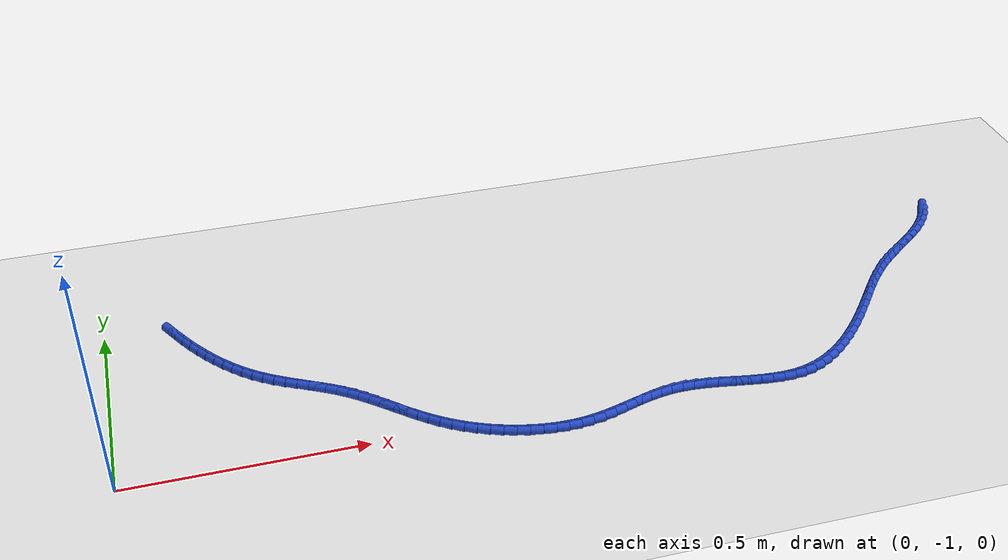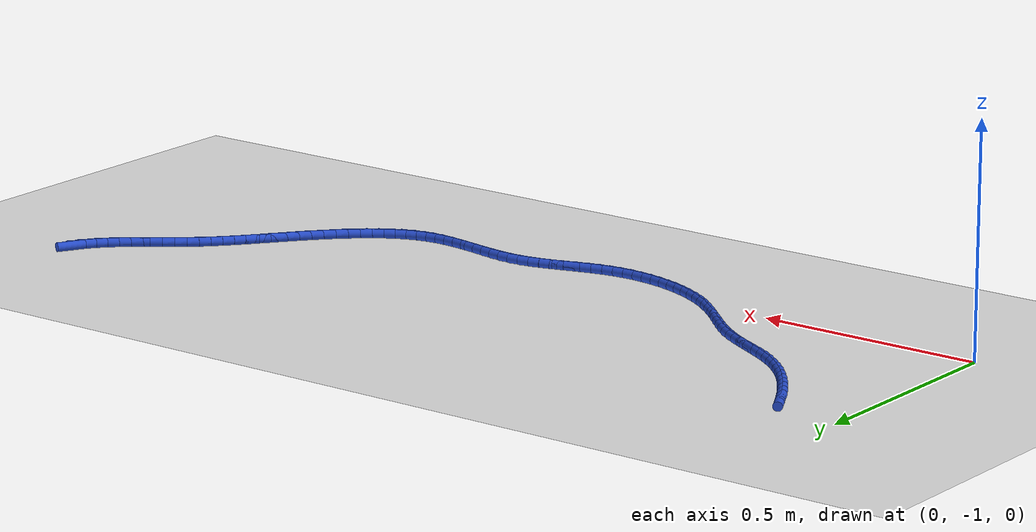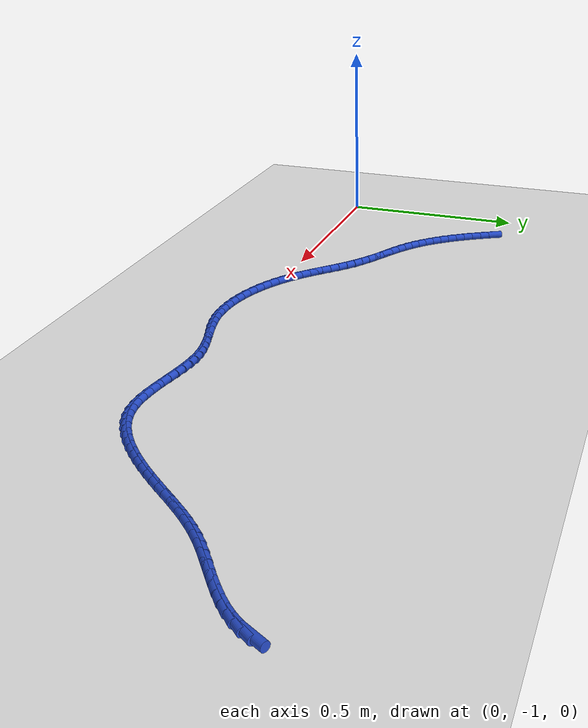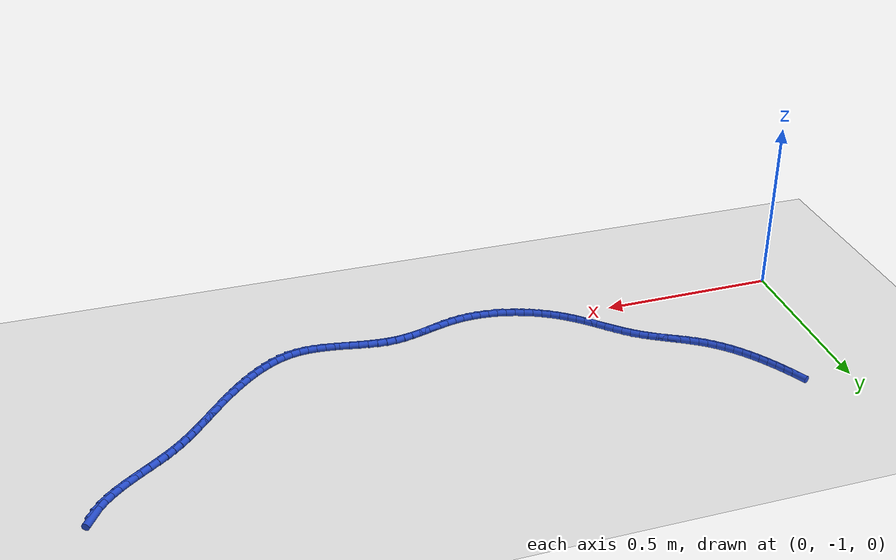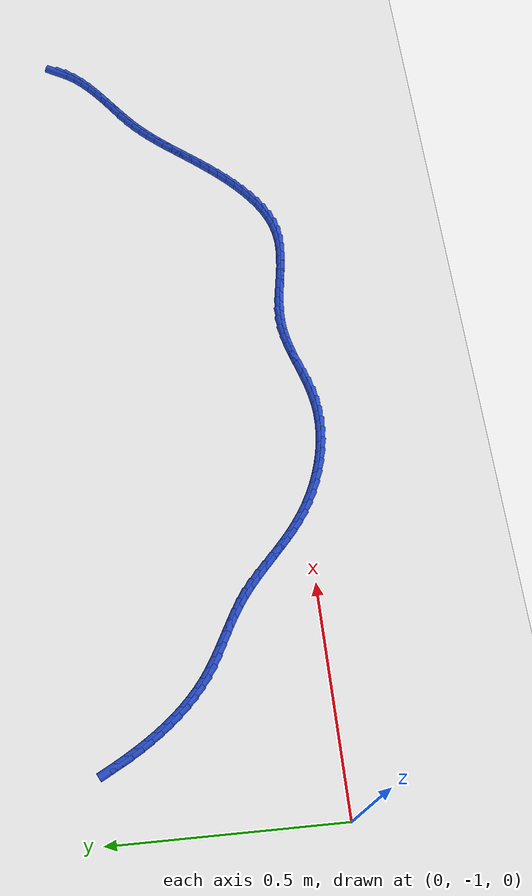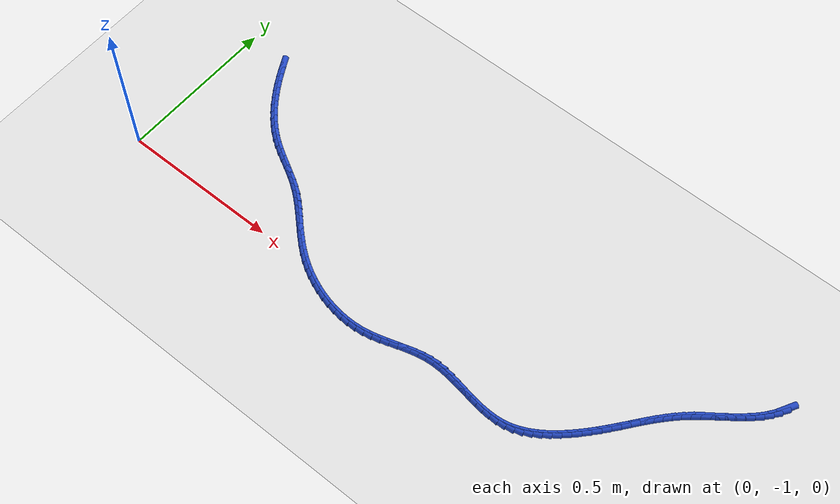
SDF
<sdf version="1.6">
 <world name="default">
  <model name="ground_plane">
   <static>1</static>
   <link name="link">
    <collision name="collision">
     <geometry><plane><normal>0 0 1</normal><size>100 100</size></plane></geometry>
     <surface><friction><ode><mu>100</mu><mu2>50</mu2></ode></friction></surface>
    </collision>
    <visual name="visual">
     <cast_shadows>0</cast_shadows>
     <geometry><plane><normal>0 0 1</normal><size>100 100</size></plane></geometry>
     <material>
      <script><uri>file://media/materials/scripts/gazebo.material</uri><name>Gazebo/WhiteGlow</name></script>
     </material>
    </visual>
   </link>
  </model>
  <model name="line">
   <link name="link_151">
    <pose>1.965276894175677 -0.5184496712808392 0.01 0 1.57 1.067705081291089</pose>
    <collision name="collision">
     <geometry><cylinder><radius>0.01</radius><length>0.08</length></cylinder></geometry>
    </collision>
    <visual name="visual">
     <material>
      <script><name>Gazebo/Blue</name><uri>file://media/materials/scripts/gazebo.material</uri></script>
     </material>
     <geometry><cylinder><radius>0.01</radius><length>0.08</length></cylinder></geometry>
    </visual>
   </link>
   <link name="link_152">
    <pose>1.9538280006618758 -0.5392536195869684 0.01 0 1.57 0.9451100345238949</pose>
    <collision name="collision">
     <geometry><cylinder><radius>0.01</radius><length>0.08</length></cylinder></geometry>
    </collision>
    <visual name="visual">
     <material>
      <script><name>Gazebo/Blue</name><uri>file://media/materials/scripts/gazebo.material</uri></script>
     </material>
     <geometry><cylinder><radius>0.01</radius><length>0.08</length></cylinder></geometry>
    </visual>
   </link>
   <link name="link_153">
    <pose>1.939697710076135 -0.558810343959787 0.01 0 1.57 0.8461090231270479</pose>
    <collision name="collision">
     <geometry><cylinder><radius>0.01</radius><length>0.08</length></cylinder></geometry>
    </collision>
    <visual name="visual">
     <material>
      <script><name>Gazebo/Blue</name><uri>file://media/materials/scripts/gazebo.material</uri></script>
     </material>
     <geometry><cylinder><radius>0.01</radius><length>0.08</length></cylinder></geometry>
    </visual>
   </link>
   <link name="link_154">
    <pose>1.9233093747792624 -0.5773199714462631 0.01 0 1.57 0.7697840137708506</pose>
    <collision name="collision">
     <geometry><cylinder><radius>0.01</radius><length>0.08</length></cylinder></geometry>
    </collision>
    <visual name="visual">
     <material>
      <script><name>Gazebo/Blue</name><uri>file://media/materials/scripts/gazebo.material</uri></script>
     </material>
     <geometry><cylinder><radius>0.01</radius><length>0.08</length></cylinder></geometry>
    </visual>
   </link>
   <link name="link_155">
    <pose>1.9050863471320683 -0.5949826290933653 0.01 0 1.57 0.7140721683317175</pose>
    <collision name="collision">
     <geometry><cylinder><radius>0.01</radius><length>0.08</length></cylinder></geometry>
    </collision>
    <visual name="visual">
     <material>
      <script><name>Gazebo/Blue</name><uri>file://media/materials/scripts/gazebo.material</uri></script>
     </material>
     <geometry><cylinder><radius>0.01</radius><length>0.08</length></cylinder></geometry>
    </visual>
   </link>
   <link name="link_156">
    <pose>1.8854519794953604 -0.6119984439480618 0.01 0 1.57 0.6768430604196012</pose>
    <collision name="collision">
     <geometry><cylinder><radius>0.01</radius><length>0.08</length></cylinder></geometry>
    </collision>
    <visual name="visual">
     <material>
      <script><name>Gazebo/Blue</name><uri>file://media/materials/scripts/gazebo.material</uri></script>
     </material>
     <geometry><cylinder><radius>0.01</radius><length>0.08</length></cylinder></geometry>
    </visual>
   </link>
   <link name="link_157">
    <pose>1.8648296242299496 -0.6285675430573202 0.01 0 1.57 0.6564313507339162</pose>
    <collision name="collision">
     <geometry><cylinder><radius>0.01</radius><length>0.08</length></cylinder></geometry>
    </collision>
    <visual name="visual">
     <material>
      <script><name>Gazebo/Blue</name><uri>file://media/materials/scripts/gazebo.material</uri></script>
     </material>
     <geometry><cylinder><radius>0.01</radius><length>0.08</length></cylinder></geometry>
    </visual>
   </link>
   <link name="link_158">
    <pose>1.843642633696645 -0.6448900534681092 0.01 0 1.57 0.6518456621480831</pose>
    <collision name="collision">
     <geometry><cylinder><radius>0.01</radius><length>0.08</length></cylinder></geometry>
    </collision>
    <visual name="visual">
     <material>
      <script><name>Gazebo/Blue</name><uri>file://media/materials/scripts/gazebo.material</uri></script>
     </material>
     <geometry><cylinder><radius>0.01</radius><length>0.08</length></cylinder></geometry>
    </visual>
   </link>
   <link name="link_159">
    <pose>1.8223143602562548 -0.6611661022273972 0.01 0 1.57 0.6628301475448952</pose>
    <collision name="collision">
     <geometry><cylinder><radius>0.01</radius><length>0.08</length></cylinder></geometry>
    </collision>
    <visual name="visual">
     <material>
      <script><name>Gazebo/Blue</name><uri>file://media/materials/scripts/gazebo.material</uri></script>
     </material>
     <geometry><cylinder><radius>0.01</radius><length>0.08</length></cylinder></geometry>
    </visual>
   </link>
   <link name="link_160">
    <pose>1.8012681562695896 -0.6775958163821523 0.01 0 1.57 0.6898691146456359</pose>
    <collision name="collision">
     <geometry><cylinder><radius>0.01</radius><length>0.08</length></cylinder></geometry>
    </collision>
    <visual name="visual">
     <material>
      <script><name>Gazebo/Blue</name><uri>file://media/materials/scripts/gazebo.material</uri></script>
     </material>
     <geometry><cylinder><radius>0.01</radius><length>0.08</length></cylinder></geometry>
    </visual>
   </link>
   <link name="link_161">
    <pose>1.7809273740974576 -0.6943793229793426 0.01 0 1.57 0.733475138785043</pose>
    <collision name="collision">
     <geometry><cylinder><radius>0.01</radius><length>0.08</length></cylinder></geometry>
    </collision>
    <visual name="visual">
     <material>
      <script><name>Gazebo/Blue</name><uri>file://media/materials/scripts/gazebo.material</uri></script>
     </material>
     <geometry><cylinder><radius>0.01</radius><length>0.08</length></cylinder></geometry>
    </visual>
   </link>
   <link name="link_162">
    <pose>1.76169708181586 -0.7117095734863929 0.01 0 1.57 0.7820999817870062</pose>
    <collision name="collision">
     <geometry><cylinder><radius>0.01</radius><length>0.08</length></cylinder></geometry>
    </collision>
    <visual name="visual">
     <material>
      <script><name>Gazebo/Blue</name><uri>file://media/materials/scripts/gazebo.material</uri></script>
     </material>
     <geometry><cylinder><radius>0.01</radius><length>0.08</length></cylinder></geometry>
    </visual>
   </link>
   <link name="link_163">
    <pose>1.7436419977473359 -0.7296459507485917 0.01 0 1.57 0.8237956237198133</pose>
    <collision name="collision">
     <geometry><cylinder><radius>0.01</radius><length>0.08</length></cylinder></geometry>
    </collision>
    <visual name="visual">
     <material>
      <script><name>Gazebo/Blue</name><uri>file://media/materials/scripts/gazebo.material</uri></script>
     </material>
     <geometry><cylinder><radius>0.01</radius><length>0.08</length></cylinder></geometry>
    </visual>
   </link>
   <link name="link_164">
    <pose>1.7265258510311992 -0.7481297158553794 0.01 0 1.57 0.85716869890517</pose>
    <collision name="collision">
     <geometry><cylinder><radius>0.01</radius><length>0.08</length></cylinder></geometry>
    </collision>
    <visual name="visual">
     <material>
      <script><name>Gazebo/Blue</name><uri>file://media/materials/scripts/gazebo.material</uri></script>
     </material>
     <geometry><cylinder><radius>0.01</radius><length>0.08</length></cylinder></geometry>
    </visual>
   </link>
   <link name="link_165">
    <pose>1.7101019959282138 -0.7670980583250598 0.01 0 1.57 0.8815682735843287</pose>
    <collision name="collision">
     <geometry><cylinder><radius>0.01</radius><length>0.08</length></cylinder></geometry>
    </collision>
    <visual name="visual">
     <material>
      <script><name>Gazebo/Blue</name><uri>file://media/materials/scripts/gazebo.material</uri></script>
     </material>
     <geometry><cylinder><radius>0.01</radius><length>0.08</length></cylinder></geometry>
    </visual>
   </link>
   <link name="link_166">
    <pose>1.6941237866991443 -0.7864881676759357 0.01 0 1.57 0.8966745380138756</pose>
    <collision name="collision">
     <geometry><cylinder><radius>0.01</radius><length>0.08</length></cylinder></geometry>
    </collision>
    <visual name="visual">
     <material>
      <script><name>Gazebo/Blue</name><uri>file://media/materials/scripts/gazebo.material</uri></script>
     </material>
     <geometry><cylinder><radius>0.01</radius><length>0.08</length></cylinder></geometry>
    </visual>
   </link>
   <link name="link_167">
    <pose>1.6783445776047565 -0.8062372334263108 0.01 0 1.57 0.9024550460264525</pose>
    <collision name="collision">
     <geometry><cylinder><radius>0.01</radius><length>0.08</length></cylinder></geometry>
    </collision>
    <visual name="visual">
     <material>
      <script><name>Gazebo/Blue</name><uri>file://media/materials/scripts/gazebo.material</uri></script>
     </material>
     <geometry><cylinder><radius>0.01</radius><length>0.08</length></cylinder></geometry>
    </visual>
   </link>
   <link name="link_168">
    <pose>1.6625177229058126 -0.8262824450944886 0.01 0 1.57 0.8991206415453086</pose>
    <collision name="collision">
     <geometry><cylinder><radius>0.01</radius><length>0.08</length></cylinder></geometry>
    </collision>
    <visual name="visual">
     <material>
      <script><name>Gazebo/Blue</name><uri>file://media/materials/scripts/gazebo.material</uri></script>
     </material>
     <geometry><cylinder><radius>0.01</radius><length>0.08</length></cylinder></geometry>
    </visual>
   </link>
   <link name="link_169">
    <pose>1.6463965768630788 -0.8465609921987727 0.01 0 1.57 0.887151039999048</pose>
    <collision name="collision">
     <geometry><cylinder><radius>0.01</radius><length>0.08</length></cylinder></geometry>
    </collision>
    <visual name="visual">
     <material>
      <script><name>Gazebo/Blue</name><uri>file://media/materials/scripts/gazebo.material</uri></script>
     </material>
     <geometry><cylinder><radius>0.01</radius><length>0.08</length></cylinder></geometry>
    </visual>
   </link>
   <link name="link_170">
    <pose>1.629741233630653 -0.8670043134201046 0.01 0 1.57 0.8681226429343367</pose>
    <collision name="collision">
     <geometry><cylinder><radius>0.01</radius><length>0.08</length></cylinder></geometry>
    </collision>
    <visual name="visual">
     <material>
      <script><name>Gazebo/Blue</name><uri>file://media/materials/scripts/gazebo.material</uri></script>
     </material>
     <geometry><cylinder><radius>0.01</radius><length>0.08</length></cylinder></geometry>
    </visual>
   </link>
   <link name="link_171">
    <pose>1.6124384854402471 -0.88743574186531 0.01 0 1.57 0.8429775357355328</pose>
    <collision name="collision">
     <geometry><cylinder><radius>0.01</radius><length>0.08</length></cylinder></geometry>
    </collision>
    <visual name="visual">
     <material>
      <script><name>Gazebo/Blue</name><uri>file://media/materials/scripts/gazebo.material</uri></script>
     </material>
     <geometry><cylinder><radius>0.01</radius><length>0.08</length></cylinder></geometry>
    </visual>
   </link>
   <link name="link_172">
    <pose>1.5944878395027704 -0.9075824361943148 0.01 0 1.57 0.8113388265575604</pose>
    <collision name="collision">
     <geometry><cylinder><radius>0.01</radius><length>0.08</length></cylinder></geometry>
    </collision>
    <visual name="visual">
     <material>
      <script><name>Gazebo/Blue</name><uri>file://media/materials/scripts/gazebo.material</uri></script>
     </material>
     <geometry><cylinder><radius>0.01</radius><length>0.08</length></cylinder></geometry>
    </visual>
   </link>
   <link name="link_173">
    <pose>1.5758927343077853 -0.9271682006898991 0.01 0 1.57 0.7725651168342612</pose>
    <collision name="collision">
     <geometry><cylinder><radius>0.01</radius><length>0.08</length></cylinder></geometry>
    </collision>
    <visual name="visual">
     <material>
      <script><name>Gazebo/Blue</name><uri>file://media/materials/scripts/gazebo.material</uri></script>
     </material>
     <geometry><cylinder><radius>0.01</radius><length>0.08</length></cylinder></geometry>
    </visual>
   </link>
   <link name="link_174">
    <pose>1.5566566083448528 -0.9459168396348449 0.01 0 1.57 0.7257928009373416</pose>
    <collision name="collision">
     <geometry><cylinder><radius>0.01</radius><length>0.08</length></cylinder></geometry>
    </collision>
    <visual name="visual">
     <material>
      <script><name>Gazebo/Blue</name><uri>file://media/materials/scripts/gazebo.material</uri></script>
     </material>
     <geometry><cylinder><radius>0.01</radius><length>0.08</length></cylinder></geometry>
    </visual>
   </link>
   <link name="link_175">
    <pose>1.5367829001035356 -0.963552157311934 0.01 0 1.57 0.6699511456182803</pose>
    <collision name="collision">
     <geometry><cylinder><radius>0.01</radius><length>0.08</length></cylinder></geometry>
    </collision>
    <visual name="visual">
     <material>
      <script><name>Gazebo/Blue</name><uri>file://media/materials/scripts/gazebo.material</uri></script>
     </material>
     <geometry><cylinder><radius>0.01</radius><length>0.08</length></cylinder></geometry>
    </visual>
   </link>
   <link name="link_176">
    <pose>1.516275048073394 -0.9797979580039471 0.01 0 1.57 0.6038061584932513</pose>
    <collision name="collision">
     <geometry><cylinder><radius>0.01</radius><length>0.08</length></cylinder></geometry>
    </collision>
    <visual name="visual">
     <material>
      <script><name>Gazebo/Blue</name><uri>file://media/materials/scripts/gazebo.material</uri></script>
     </material>
     <geometry><cylinder><radius>0.01</radius><length>0.08</length></cylinder></geometry>
    </visual>
   </link>
   <link name="link_177">
    <pose>1.4951364907439912 -0.9943780459936669 0.01 0 1.57 0.5260650137779697</pose>
    <collision name="collision">
     <geometry><cylinder><radius>0.01</radius><length>0.08</length></cylinder></geometry>
    </collision>
    <visual name="visual">
     <material>
      <script><name>Gazebo/Blue</name><uri>file://media/materials/scripts/gazebo.material</uri></script>
     </material>
     <geometry><cylinder><radius>0.01</radius><length>0.08</length></cylinder></geometry>
    </visual>
   </link>
   <link name="link_178">
    <pose>1.4733706666048887 -1.0070162255638737 0.01 0 1.57 0.43558398252144775</pose>
    <collision name="collision">
     <geometry><cylinder><radius>0.01</radius><length>0.08</length></cylinder></geometry>
    </collision>
    <visual name="visual">
     <material>
      <script><name>Gazebo/Blue</name><uri>file://media/materials/scripts/gazebo.material</uri></script>
     </material>
     <geometry><cylinder><radius>0.01</radius><length>0.08</length></cylinder></geometry>
    </visual>
   </link>
   <link name="link_179">
    <pose>1.4509810141456476 -1.0174363009973493 0.01 0 1.57 0.33172066715835363</pose>
    <collision name="collision">
     <geometry><cylinder><radius>0.01</radius><length>0.08</length></cylinder></geometry>
    </collision>
    <visual name="visual">
     <material>
      <script><name>Gazebo/Blue</name><uri>file://media/materials/scripts/gazebo.material</uri></script>
     </material>
     <geometry><cylinder><radius>0.01</radius><length>0.08</length></cylinder></geometry>
    </visual>
   </link>
   <link name="link_180">
    <pose>1.42797097185583 -1.0253620765768754 0.01 0 1.57 0.21490538724961683</pose>
    <collision name="collision">
     <geometry><cylinder><radius>0.01</radius><length>0.08</length></cylinder></geometry>
    </collision>
    <visual name="visual">
     <material>
      <script><name>Gazebo/Blue</name><uri>file://media/materials/scripts/gazebo.material</uri></script>
     </material>
     <geometry><cylinder><radius>0.01</radius><length>0.08</length></cylinder></geometry>
    </visual>
   </link>
   <link name="link_181">
    <pose>1.404344186047511 -1.0305192390154334 0.01 0 1.57 0.09707865303874233</pose>
    <collision name="collision">
     <geometry><cylinder><radius>0.01</radius><length>0.08</length></cylinder></geometry>
    </collision>
    <visual name="visual">
     <material>
      <script><name>Gazebo/Blue</name><uri>file://media/materials/scripts/gazebo.material</uri></script>
     </material>
     <geometry><cylinder><radius>0.01</radius><length>0.08</length></cylinder></geometry>
    </visual>
   </link>
   <link name="link_182">
    <pose>1.3801312120989178 -1.0328772139640507 0.01 0 1.57 0.00042199425819911224</pose>
    <collision name="collision">
     <geometry><cylinder><radius>0.01</radius><length>0.08</length></cylinder></geometry>
    </collision>
    <visual name="visual">
     <material>
      <script><name>Gazebo/Blue</name><uri>file://media/materials/scripts/gazebo.material</uri></script>
     </material>
     <geometry><cylinder><radius>0.01</radius><length>0.08</length></cylinder></geometry>
    </visual>
   </link>
   <link name="link_183">
    <pose>1.3554158426733494 -1.0328876437086567 0.01 0 1.57 -0.07265271076045415</pose>
    <collision name="collision">
     <geometry><cylinder><radius>0.01</radius><length>0.08</length></cylinder></geometry>
    </collision>
    <visual name="visual">
     <material>
      <script><name>Gazebo/Blue</name><uri>file://media/materials/scripts/gazebo.material</uri></script>
     </material>
     <geometry><cylinder><radius>0.01</radius><length>0.08</length></cylinder></geometry>
    </visual>
   </link>
   <link name="link_184">
    <pose>1.3302881254913301 -1.031058828057119 0.01 0 1.57 -0.1235234635745584</pose>
    <collision name="collision">
     <geometry><cylinder><radius>0.01</radius><length>0.08</length></cylinder></geometry>
    </collision>
    <visual name="visual">
     <material>
      <script><name>Gazebo/Blue</name><uri>file://media/materials/scripts/gazebo.material</uri></script>
     </material>
     <geometry><cylinder><radius>0.01</radius><length>0.08</length></cylinder></geometry>
    </visual>
   </link>
   <link name="link_185">
    <pose>1.304838108273385 -1.0278990668173058 0.01 0 1.57 -0.15383923819312187</pose>
    <collision name="collision">
     <geometry><cylinder><radius>0.01</radius><length>0.08</length></cylinder></geometry>
    </collision>
    <visual name="visual">
     <material>
      <script><name>Gazebo/Blue</name><uri>file://media/materials/scripts/gazebo.material</uri></script>
     </material>
     <geometry><cylinder><radius>0.01</radius><length>0.08</length></cylinder></geometry>
    </visual>
   </link>
   <link name="link_186">
    <pose>1.279155838740039 -1.0239166597970855 0.01 0 1.57 -0.1648726464082603</pose>
    <collision name="collision">
     <geometry><cylinder><radius>0.01</radius><length>0.08</length></cylinder></geometry>
    </collision>
    <visual name="visual">
     <material>
      <script><name>Gazebo/Blue</name><uri>file://media/materials/scripts/gazebo.material</uri></script>
     </material>
     <geometry><cylinder><radius>0.01</radius><length>0.08</length></cylinder></geometry>
    </visual>
   </link>
   <link name="link_187">
    <pose>1.2533313646118176 -1.019619906804326 0.01 0 1.57 -0.15724337258720825</pose>
    <collision name="collision">
     <geometry><cylinder><radius>0.01</radius><length>0.08</length></cylinder></geometry>
    </collision>
    <visual name="visual">
     <material>
      <script><name>Gazebo/Blue</name><uri>file://media/materials/scripts/gazebo.material</uri></script>
     </material>
     <geometry><cylinder><radius>0.01</radius><length>0.08</length></cylinder></geometry>
    </visual>
   </link>
   <link name="link_188">
    <pose>1.2274547336092447 -1.0155171076468947 0.01 0 1.57 -0.13085445527852418</pose>
    <collision name="collision">
     <geometry><cylinder><radius>0.01</radius><length>0.08</length></cylinder></geometry>
    </collision>
    <visual name="visual">
     <material>
      <script><name>Gazebo/Blue</name><uri>file://media/materials/scripts/gazebo.material</uri></script>
     </material>
     <geometry><cylinder><radius>0.01</radius><length>0.08</length></cylinder></geometry>
    </visual>
   </link>
   <link name="link_189">
    <pose>1.2016159934528468 -1.0121165621326607 0.01 0 1.57 -0.08497279485243814</pose>
    <collision name="collision">
     <geometry><cylinder><radius>0.01</radius><length>0.08</length></cylinder></geometry>
    </collision>
    <visual name="visual">
     <material>
      <script><name>Gazebo/Blue</name><uri>file://media/materials/scripts/gazebo.material</uri></script>
     </material>
     <geometry><cylinder><radius>0.01</radius><length>0.08</length></cylinder></geometry>
    </visual>
   </link>
   <link name="link_190">
    <pose>1.1759051918631485 -1.009926570069492 0.01 0 1.57 -0.01847913498421493</pose>
    <collision name="collision">
     <geometry><cylinder><radius>0.01</radius><length>0.08</length></cylinder></geometry>
    </collision>
    <visual name="visual">
     <material>
      <script><name>Gazebo/Blue</name><uri>file://media/materials/scripts/gazebo.material</uri></script>
     </material>
     <geometry><cylinder><radius>0.01</radius><length>0.08</length></cylinder></geometry>
    </visual>
   </link>
   <link name="link_191">
    <pose>1.1504123765606744 -1.009455431265256 0.01 0 1.57 0.06917729159793871</pose>
    <collision name="collision">
     <geometry><cylinder><radius>0.01</radius><length>0.08</length></cylinder></geometry>
    </collision>
    <visual name="visual">
     <material>
      <script><name>Gazebo/Blue</name><uri>file://media/materials/scripts/gazebo.material</uri></script>
     </material>
     <geometry><cylinder><radius>0.01</radius><length>0.08</length></cylinder></geometry>
    </visual>
   </link>
   <link name="link_192">
    <pose>1.1252257549025007 -1.0112005581915375 0.01 0 1.57 0.16007415623861534</pose>
    <collision name="collision">
     <geometry><cylinder><radius>0.01</radius><length>0.08</length></cylinder></geometry>
    </collision>
    <visual name="visual">
     <material>
      <script><name>Gazebo/Blue</name><uri>file://media/materials/scripts/gazebo.material</uri></script>
     </material>
     <geometry><cylinder><radius>0.01</radius><length>0.08</length></cylinder></geometry>
    </visual>
   </link>
   <link name="link_193">
    <pose>1.100358507143687 -1.0152155133345335 0.01 0 1.57 0.22929246879765885</pose>
    <collision name="collision">
     <geometry><cylinder><radius>0.01</radius><length>0.08</length></cylinder></geometry>
    </collision>
    <visual name="visual">
     <material>
      <script><name>Gazebo/Blue</name><uri>file://media/materials/scripts/gazebo.material</uri></script>
     </material>
     <geometry><cylinder><radius>0.01</radius><length>0.08</length></cylinder></geometry>
    </visual>
   </link>
   <link name="link_194">
    <pose>1.0757242864452097 -1.0209650706217932 0.01 0 1.57 0.27489670957169055</pose>
    <collision name="collision">
     <geometry><cylinder><radius>0.01</radius><length>0.08</length></cylinder></geometry>
    </collision>
    <visual name="visual">
     <material>
      <script><name>Gazebo/Blue</name><uri>file://media/materials/scripts/gazebo.material</uri></script>
     </material>
     <geometry><cylinder><radius>0.01</radius><length>0.08</length></cylinder></geometry>
    </visual>
   </link>
   <link name="link_195">
    <pose>1.0512298826227857 -1.027873401377137 0.01 0 1.57 0.29733555616281865</pose>
    <collision name="collision">
     <geometry><cylinder><radius>0.01</radius><length>0.08</length></cylinder></geometry>
    </collision>
    <visual name="visual">
     <material>
      <script><name>Gazebo/Blue</name><uri>file://media/materials/scripts/gazebo.material</uri></script>
     </material>
     <geometry><cylinder><radius>0.01</radius><length>0.08</length></cylinder></geometry>
    </visual>
   </link>
   <link name="link_196">
    <pose>1.0267820854921348 -1.035364676924386 0.01 0 1.57 0.2970681600308469</pose>
    <collision name="collision">
     <geometry><cylinder><radius>0.01</radius><length>0.08</length></cylinder></geometry>
    </collision>
    <visual name="visual">
     <material>
      <script><name>Gazebo/Blue</name><uri>file://media/materials/scripts/gazebo.material</uri></script>
     </material>
     <geometry><cylinder><radius>0.01</radius><length>0.08</length></cylinder></geometry>
    </visual>
   </link>
   <link name="link_197">
    <pose>1.0022876848689732 -1.042863068587361 0.01 0 1.57 0.2742165923562073</pose>
    <collision name="collision">
     <geometry><cylinder><radius>0.01</radius><length>0.08</length></cylinder></geometry>
    </collision>
    <visual name="visual">
     <material>
      <script><name>Gazebo/Blue</name><uri>file://media/materials/scripts/gazebo.material</uri></script>
     </material>
     <geometry><cylinder><radius>0.01</radius><length>0.08</length></cylinder></geometry>
    </visual>
   </link>
   <link name="link_198">
    <pose>0.9776534705690206 -1.049792747689882 0.01 0 1.57 0.22857519778237567</pose>
    <collision name="collision">
     <geometry><cylinder><radius>0.01</radius><length>0.08</length></cylinder></geometry>
    </collision>
    <visual name="visual">
     <material>
      <script><name>Gazebo/Blue</name><uri>file://media/materials/scripts/gazebo.material</uri></script>
     </material>
     <geometry><cylinder><radius>0.01</radius><length>0.08</length></cylinder></geometry>
    </visual>
   </link>
   <link name="link_199">
    <pose>0.9527862324079955 -1.055577885555771 0.01 0 1.57 0.16030134385649122</pose>
    <collision name="collision">
     <geometry><cylinder><radius>0.01</radius><length>0.08</length></cylinder></geometry>
    </collision>
    <visual name="visual">
     <material>
      <script><name>Gazebo/Blue</name><uri>file://media/materials/scripts/gazebo.material</uri></script>
     </material>
     <geometry><cylinder><radius>0.01</radius><length>0.08</length></cylinder></geometry>
    </visual>
   </link>
   <link name="link_200">
    <pose>0.9275954984972885 -1.0596509417585565 0.01 0 1.57 0.08114000682411848</pose>
    <collision name="collision">
     <geometry><cylinder><radius>0.01</radius><length>0.08</length></cylinder></geometry>
    </collision>
    <visual name="visual">
     <material>
      <script><name>Gazebo/Blue</name><uri>file://media/materials/scripts/gazebo.material</uri></script>
     </material>
     <geometry><cylinder><radius>0.01</radius><length>0.08</length></cylinder></geometry>
    </visual>
   </link>
   <link name="link_201">
    <pose>0.9020836839275707 -1.0617255253789328 0.01 0 1.57 0.005164687241872264</pose>
    <collision name="collision">
     <geometry><cylinder><radius>0.01</radius><length>0.08</length></cylinder></geometry>
    </collision>
    <visual name="visual">
     <material>
      <script><name>Gazebo/Blue</name><uri>file://media/materials/scripts/gazebo.material</uri></script>
     </material>
     <geometry><cylinder><radius>0.01</radius><length>0.08</length></cylinder></geometry>
    </visual>
   </link>
   <link name="link_202">
    <pose>0.8763665588009852 -1.061858347467939 0.01 0 1.57 -0.06700844175498503</pose>
    <collision name="collision">
     <geometry><cylinder><radius>0.01</radius><length>0.08</length></cylinder></geometry>
    </collision>
    <visual name="visual">
     <material>
      <script><name>Gazebo/Blue</name><uri>file://media/materials/scripts/gazebo.material</uri></script>
     </material>
     <geometry><cylinder><radius>0.01</radius><length>0.08</length></cylinder></geometry>
    </visual>
   </link>
   <link name="link_203">
    <pose>0.8505667760792399 -1.0601269520565344 0.01 0 1.57 -0.13573239014768398</pose>
    <collision name="collision">
     <geometry><cylinder><radius>0.01</radius><length>0.08</length></cylinder></geometry>
    </collision>
    <visual name="visual">
     <material>
      <script><name>Gazebo/Blue</name><uri>file://media/materials/scripts/gazebo.material</uri></script>
     </material>
     <geometry><cylinder><radius>0.01</radius><length>0.08</length></cylinder></geometry>
    </visual>
   </link>
   <link name="link_204">
    <pose>0.8248069887240409 -1.0566088831756764 0.01 0 1.57 -0.20144058594982972</pose>
    <collision name="collision">
     <geometry><cylinder><radius>0.01</radius><length>0.08</length></cylinder></geometry>
    </collision>
    <visual name="visual">
     <material>
      <script><name>Gazebo/Blue</name><uri>file://media/materials/scripts/gazebo.material</uri></script>
     </material>
     <geometry><cylinder><radius>0.01</radius><length>0.08</length></cylinder></geometry>
    </visual>
   </link>
   <link name="link_205">
    <pose>0.7992098496970959 -1.0513816848563236 0.01 0 1.57 -0.26461699549449313</pose>
    <collision name="collision">
     <geometry><cylinder><radius>0.01</radius><length>0.08</length></cylinder></geometry>
    </collision>
    <visual name="visual">
     <material>
      <script><name>Gazebo/Blue</name><uri>file://media/materials/scripts/gazebo.material</uri></script>
     </material>
     <geometry><cylinder><radius>0.01</radius><length>0.08</length></cylinder></geometry>
    </visual>
   </link>
   <link name="link_206">
    <pose>0.7738980119601117 -1.0445229011294346 0.01 0 1.57 -0.325775722866159</pose>
    <collision name="collision">
     <geometry><cylinder><radius>0.01</radius><length>0.08</length></cylinder></geometry>
    </collision>
    <visual name="visual">
     <material>
      <script><name>Gazebo/Blue</name><uri>file://media/materials/scripts/gazebo.material</uri></script>
     </material>
     <geometry><cylinder><radius>0.01</radius><length>0.08</length></cylinder></geometry>
    </visual>
   </link>
   <link name="link_207">
    <pose>0.7489941284747951 -1.0361100760259672 0.01 0 1.57 -0.38544868973741775</pose>
    <collision name="collision">
     <geometry><cylinder><radius>0.01</radius><length>0.08</length></cylinder></geometry>
    </collision>
    <visual name="visual">
     <material>
      <script><name>Gazebo/Blue</name><uri>file://media/materials/scripts/gazebo.material</uri></script>
     </material>
     <geometry><cylinder><radius>0.01</radius><length>0.08</length></cylinder></geometry>
    </visual>
   </link>
   <link name="link_208">
    <pose>0.7246208522028528 -1.02622075357688 0.01 0 1.57 -0.4441796531326728</pose>
    <collision name="collision">
     <geometry><cylinder><radius>0.01</radius><length>0.08</length></cylinder></geometry>
    </collision>
    <visual name="visual">
     <material>
      <script><name>Gazebo/Blue</name><uri>file://media/materials/scripts/gazebo.material</uri></script>
     </material>
     <geometry><cylinder><radius>0.01</radius><length>0.08</length></cylinder></geometry>
    </visual>
   </link>
   <link name="link_209">
    <pose>0.7009008361059922 -1.014932477813132 0.01 0 1.57 -0.5025228708027191</pose>
    <collision name="collision">
     <geometry><cylinder><radius>0.01</radius><length>0.08</length></cylinder></geometry>
    </collision>
    <visual name="visual">
     <material>
      <script><name>Gazebo/Blue</name><uri>file://media/materials/scripts/gazebo.material</uri></script>
     </material>
     <geometry><cylinder><radius>0.01</radius><length>0.08</length></cylinder></geometry>
    </visual>
   </link>
   <link name="link_210">
    <pose>0.6779567331459199 -1.0023227927656804 0.01 0 1.57 -0.5610449119376734</pose>
    <collision name="collision">
     <geometry><cylinder><radius>0.01</radius><length>0.08</length></cylinder></geometry>
    </collision>
    <visual name="visual">
     <material>
      <script><name>Gazebo/Blue</name><uri>file://media/materials/scripts/gazebo.material</uri></script>
     </material>
     <geometry><cylinder><radius>0.01</radius><length>0.08</length></cylinder></geometry>
    </visual>
   </link>
   <link name="link_211">
    <pose>0.655911196284343 -0.9884692424654842 0.01 0 1.57 -0.6200287613525961</pose>
    <collision name="collision">
     <geometry><cylinder><radius>0.01</radius><length>0.08</length></cylinder></geometry>
    </collision>
    <visual name="visual">
     <material>
      <script><name>Gazebo/Blue</name><uri>file://media/materials/scripts/gazebo.material</uri></script>
     </material>
     <geometry><cylinder><radius>0.01</radius><length>0.08</length></cylinder></geometry>
    </visual>
   </link>
   <link name="link_212">
    <pose>0.6348792028730078 -0.9734533997124266 0.01 0 1.57 -0.6731257953245378</pose>
    <collision name="collision">
     <geometry><cylinder><radius>0.01</radius><length>0.08</length></cylinder></geometry>
    </collision>
    <visual name="visual">
     <material>
      <script><name>Gazebo/Blue</name><uri>file://media/materials/scripts/gazebo.material</uri></script>
     </material>
     <geometry><cylinder><radius>0.01</radius><length>0.08</length></cylinder></geometry>
    </visual>
   </link>
   <link name="link_213">
    <pose>0.6148044765513014 -0.9574467248382372 0.01 0 1.57 -0.7133378492250712</pose>
    <collision name="collision">
     <geometry><cylinder><radius>0.01</radius><length>0.08</length></cylinder></geometry>
    </collision>
    <visual name="visual">
     <material>
      <script><name>Gazebo/Blue</name><uri>file://media/materials/scripts/gazebo.material</uri></script>
     </material>
     <geometry><cylinder><radius>0.01</radius><length>0.08</length></cylinder></geometry>
    </visual>
   </link>
   <link name="link_214">
    <pose>0.5954623730648162 -0.9407090510000108 0.01 0 1.57 -0.7400402319657198</pose>
    <collision name="collision">
     <geometry><cylinder><radius>0.01</radius><length>0.08</length></cylinder></geometry>
    </collision>
    <visual name="visual">
     <material>
      <script><name>Gazebo/Blue</name><uri>file://media/materials/scripts/gazebo.material</uri></script>
     </material>
     <geometry><cylinder><radius>0.01</radius><length>0.08</length></cylinder></geometry>
    </visual>
   </link>
   <link name="link_215">
    <pose>0.5766211497651524 -0.9235039371550412 0.01 0 1.57 -0.7530843476086381</pose>
    <collision name="collision">
     <geometry><cylinder><radius>0.01</radius><length>0.08</length></cylinder></geometry>
    </collision>
    <visual name="visual">
     <material>
      <script><name>Gazebo/Blue</name><uri>file://media/materials/scripts/gazebo.material</uri></script>
     </material>
     <geometry><cylinder><radius>0.01</radius><length>0.08</length></cylinder></geometry>
    </visual>
   </link>
   <link name="link_216">
    <pose>0.5580490640039107 -0.9060949422606228 0.01 0 1.57 -0.7523766846654983</pose>
    <collision name="collision">
     <geometry><cylinder><radius>0.01</radius><length>0.08</length></cylinder></geometry>
    </collision>
    <visual name="visual">
     <material>
      <script><name>Gazebo/Blue</name><uri>file://media/materials/scripts/gazebo.material</uri></script>
     </material>
     <geometry><cylinder><radius>0.01</radius><length>0.08</length></cylinder></geometry>
    </visual>
   </link>
   <link name="link_217">
    <pose>0.5395143731326919 -0.8887456252740505 0.01 0 1.57 -0.7378057453599265</pose>
    <collision name="collision">
     <geometry><cylinder><radius>0.01</radius><length>0.08</length></cylinder></geometry>
    </collision>
    <visual name="visual">
     <material>
      <script><name>Gazebo/Blue</name><uri>file://media/materials/scripts/gazebo.material</uri></script>
     </material>
     <geometry><cylinder><radius>0.01</radius><length>0.08</length></cylinder></geometry>
    </visual>
   </link>
   <link name="link_218">
    <pose>0.5207853345030967 -0.8717195451526187 0.01 0 1.57 -0.7092459647161011</pose>
    <collision name="collision">
     <geometry><cylinder><radius>0.01</radius><length>0.08</length></cylinder></geometry>
    </collision>
    <visual name="visual">
     <material>
      <script><name>Gazebo/Blue</name><uri>file://media/materials/scripts/gazebo.material</uri></script>
     </material>
     <geometry><cylinder><radius>0.01</radius><length>0.08</length></cylinder></geometry>
    </visual>
   </link>
   <link name="link_219">
    <pose>0.5016302054667264 -0.855280260853622 0.01 0 1.57 -0.6666430118815402</pose>
    <collision name="collision">
     <geometry><cylinder><radius>0.01</radius><length>0.08</length></cylinder></geometry>
    </collision>
    <visual name="visual">
     <material>
      <script><name>Gazebo/Blue</name><uri>file://media/materials/scripts/gazebo.material</uri></script>
     </material>
     <geometry><cylinder><radius>0.01</radius><length>0.08</length></cylinder></geometry>
    </visual>
   </link>
   <link name="link_220">
    <pose>0.48181724337518056 -0.839691331334354 0.01 0 1.57 -0.6111207158746194</pose>
    <collision name="collision">
     <geometry><cylinder><radius>0.01</radius><length>0.08</length></cylinder></geometry>
    </collision>
    <visual name="visual">
     <material>
      <script><name>Gazebo/Blue</name><uri>file://media/materials/scripts/gazebo.material</uri></script>
     </material>
     <geometry><cylinder><radius>0.01</radius><length>0.08</length></cylinder></geometry>
    </visual>
   </link>
   <link name="link_221">
    <pose>0.4611300386398356 -0.825198116861623 0.01 0 1.57 -0.559342849066364</pose>
    <collision name="collision">
     <geometry><cylinder><radius>0.01</radius><length>0.08</length></cylinder></geometry>
    </collision>
    <visual name="visual">
     <material>
      <script><name>Gazebo/Blue</name><uri>file://media/materials/scripts/gazebo.material</uri></script>
     </material>
     <geometry><cylinder><radius>0.01</radius><length>0.08</length></cylinder></geometry>
    </visual>
   </link>
   <link name="link_222">
    <pose>0.43961780173226017 -0.8117307152996814 0.01 0 1.57 -0.5249555791369579</pose>
    <collision name="collision">
     <geometry><cylinder><radius>0.01</radius><length>0.08</length></cylinder></geometry>
    </collision>
    <visual name="visual">
     <material>
      <script><name>Gazebo/Blue</name><uri>file://media/materials/scripts/gazebo.material</uri></script>
     </material>
     <geometry><cylinder><radius>0.01</radius><length>0.08</length></cylinder></geometry>
    </visual>
   </link>
   <link name="link_223">
    <pose>0.4175544692007736 -0.7989524988640465 0.01 0 1.57 -0.5080087196323948</pose>
    <collision name="collision">
     <geometry><cylinder><radius>0.01</radius><length>0.08</length></cylinder></geometry>
    </collision>
    <visual name="visual">
     <material>
      <script><name>Gazebo/Blue</name><uri>file://media/materials/scripts/gazebo.material</uri></script>
     </material>
     <geometry><cylinder><radius>0.01</radius><length>0.08</length></cylinder></geometry>
    </visual>
   </link>
   <link name="link_224">
    <pose>0.39522106012797426 -0.7865184335648787 0.01 0 1.57 -0.5082472199843932</pose>
    <collision name="collision">
     <geometry><cylinder><radius>0.01</radius><length>0.08</length></cylinder></geometry>
    </collision>
    <visual name="visual">
     <material>
      <script><name>Gazebo/Blue</name><uri>file://media/materials/scripts/gazebo.material</uri></script>
     </material>
     <geometry><cylinder><radius>0.01</radius><length>0.08</length></cylinder></geometry>
    </visual>
   </link>
   <link name="link_225">
    <pose>0.3728985935964605 -0.7740834854123388 0.01 0 1.57 -0.5256915307220057</pose>
    <collision name="collision">
     <geometry><cylinder><radius>0.01</radius><length>0.08</length></cylinder></geometry>
    </collision>
    <visual name="visual">
     <material>
      <script><name>Gazebo/Blue</name><uri>file://media/materials/scripts/gazebo.material</uri></script>
     </material>
     <geometry><cylinder><radius>0.01</radius><length>0.08</length></cylinder></geometry>
    </visual>
   </link>
   <link name="link_226">
    <pose>0.3508680886888306 -0.7613026204165868 0.01 0 1.57 -0.5606364102839329</pose>
    <collision name="collision">
     <geometry><cylinder><radius>0.01</radius><length>0.08</length></cylinder></geometry>
    </collision>
    <visual name="visual">
     <material>
      <script><name>Gazebo/Blue</name><uri>file://media/materials/scripts/gazebo.material</uri></script>
     </material>
     <geometry><cylinder><radius>0.01</radius><length>0.08</length></cylinder></geometry>
    </visual>
   </link>
   <link name="link_227">
    <pose>0.32941056448768297 -0.7478308045877833 0.01 0 1.57 -0.6134137133710698</pose>
    <collision name="collision">
     <geometry><cylinder><radius>0.01</radius><length>0.08</length></cylinder></geometry>
    </collision>
    <visual name="visual">
     <material>
      <script><name>Gazebo/Blue</name><uri>file://media/materials/scripts/gazebo.material</uri></script>
     </material>
     <geometry><cylinder><radius>0.01</radius><length>0.08</length></cylinder></geometry>
    </visual>
   </link>
   <link name="link_228">
    <pose>0.3088057134649916 -0.7333247359355898 0.01 0 1.57 -0.6767567179551822</pose>
    <collision name="collision">
     <geometry><cylinder><radius>0.01</radius><length>0.08</length></cylinder></geometry>
    </collision>
    <visual name="visual">
     <material>
      <script><name>Gazebo/Blue</name><uri>file://media/materials/scripts/gazebo.material</uri></script>
     </material>
     <geometry><cylinder><radius>0.01</radius><length>0.08</length></cylinder></geometry>
    </visual>
   </link>
   <link name="link_229">
    <pose>0.28921887545241093 -0.717590409265872 0.01 0 1.57 -0.7372694905627678</pose>
    <collision name="collision">
     <geometry><cylinder><radius>0.01</radius><length>0.08</length></cylinder></geometry>
    </collision>
    <visual name="visual">
     <material>
      <script><name>Gazebo/Blue</name><uri>file://media/materials/scripts/gazebo.material</uri></script>
     </material>
     <geometry><cylinder><radius>0.01</radius><length>0.08</length></cylinder></geometry>
    </visual>
   </link>
   <link name="link_230">
    <pose>0.270614603142325 -0.7006959635425031 0.01 0 1.57 -0.7933209412520371</pose>
    <collision name="collision">
     <geometry><cylinder><radius>0.01</radius><length>0.08</length></cylinder></geometry>
    </collision>
    <visual name="visual">
     <material>
      <script><name>Gazebo/Blue</name><uri>file://media/materials/scripts/gazebo.material</uri></script>
     </material>
     <geometry><cylinder><radius>0.01</radius><length>0.08</length></cylinder></geometry>
    </visual>
   </link>
   <link name="link_231">
    <pose>0.2529370990132967 -0.6827361066106405 0.01 0 1.57 -0.8447631215403947</pose>
    <collision name="collision">
     <geometry><cylinder><radius>0.01</radius><length>0.08</length></cylinder></geometry>
    </collision>
    <visual name="visual">
     <material>
      <script><name>Gazebo/Blue</name><uri>file://media/materials/scripts/gazebo.material</uri></script>
     </material>
     <geometry><cylinder><radius>0.01</radius><length>0.08</length></cylinder></geometry>
    </visual>
   </link>
   <link name="link_232">
    <pose>0.23613056554388948 -0.6638055463154421 0.01 0 1.57 -0.8915732895606977</pose>
    <collision name="collision">
     <geometry><cylinder><radius>0.01</radius><length>0.08</length></cylinder></geometry>
    </collision>
    <visual name="visual">
     <material>
      <script><name>Gazebo/Blue</name><uri>file://media/materials/scripts/gazebo.material</uri></script>
     </material>
     <geometry><cylinder><radius>0.01</radius><length>0.08</length></cylinder></geometry>
    </visual>
   </link>
   <link name="link_233">
    <pose>0.22013920521266664 -0.6439989905020655 0.01 0 1.57 -0.9338207718971971</pose>
    <collision name="collision">
     <geometry><cylinder><radius>0.01</radius><length>0.08</length></cylinder></geometry>
    </collision>
    <visual name="visual">
     <material>
      <script><name>Gazebo/Blue</name><uri>file://media/materials/scripts/gazebo.material</uri></script>
     </material>
     <geometry><cylinder><radius>0.01</radius><length>0.08</length></cylinder></geometry>
    </visual>
   </link>
   <link name="link_234">
    <pose>0.20490722049819168 -0.6234111470156692 0.01 0 1.57 -0.9716360004564175</pose>
    <collision name="collision">
     <geometry><cylinder><radius>0.01</radius><length>0.08</length></cylinder></geometry>
    </collision>
    <visual name="visual">
     <material>
      <script><name>Gazebo/Blue</name><uri>file://media/materials/scripts/gazebo.material</uri></script>
     </material>
     <geometry><cylinder><radius>0.01</radius><length>0.08</length></cylinder></geometry>
    </visual>
   </link>
   <link name="link_235">
    <pose>0.19037881387902808 -0.6021367237014106 0.01 0 1.57 -1.0051840400913856</pose>
    <collision name="collision">
     <geometry><cylinder><radius>0.01</radius><length>0.08</length></cylinder></geometry>
    </collision>
    <visual name="visual">
     <material>
      <script><name>Gazebo/Blue</name><uri>file://media/materials/scripts/gazebo.material</uri></script>
     </material>
     <geometry><cylinder><radius>0.01</radius><length>0.08</length></cylinder></geometry>
    </visual>
   </link>
   <link name="link_236">
    <pose>0.17649818783373877 -0.5802704284044469 0.01 0 1.57 -1.0346433458282527</pose>
    <collision name="collision">
     <geometry><cylinder><radius>0.01</radius><length>0.08</length></cylinder></geometry>
    </collision>
    <visual name="visual">
     <material>
      <script><name>Gazebo/Blue</name><uri>file://media/materials/scripts/gazebo.material</uri></script>
     </material>
     <geometry><cylinder><radius>0.01</radius><length>0.08</length></cylinder></geometry>
    </visual>
   </link>
   <link name="link_237">
    <pose>0.16320954484088812 -0.5579069689699377 0.01 0 1.57 -1.0601894834559609</pose>
    <collision name="collision">
     <geometry><cylinder><radius>0.01</radius><length>0.08</length></cylinder></geometry>
    </collision>
    <visual name="visual">
     <material>
      <script><name>Gazebo/Blue</name><uri>file://media/materials/scripts/gazebo.material</uri></script>
     </material>
     <geometry><cylinder><radius>0.01</radius><length>0.08</length></cylinder></geometry>
    </visual>
   </link>
   <link name="link_238">
    <pose>0.15045708737903904 -0.5351410532430397 0.01 0 1.57 -1.0819830305450449</pose>
    <collision name="collision">
     <geometry><cylinder><radius>0.01</radius><length>0.08</length></cylinder></geometry>
    </collision>
    <visual name="visual">
     <material>
      <script><name>Gazebo/Blue</name><uri>file://media/materials/scripts/gazebo.material</uri></script>
     </material>
     <geometry><cylinder><radius>0.01</radius><length>0.08</length></cylinder></geometry>
    </visual>
   </link>
  </model>
 </world>
</sdf>
